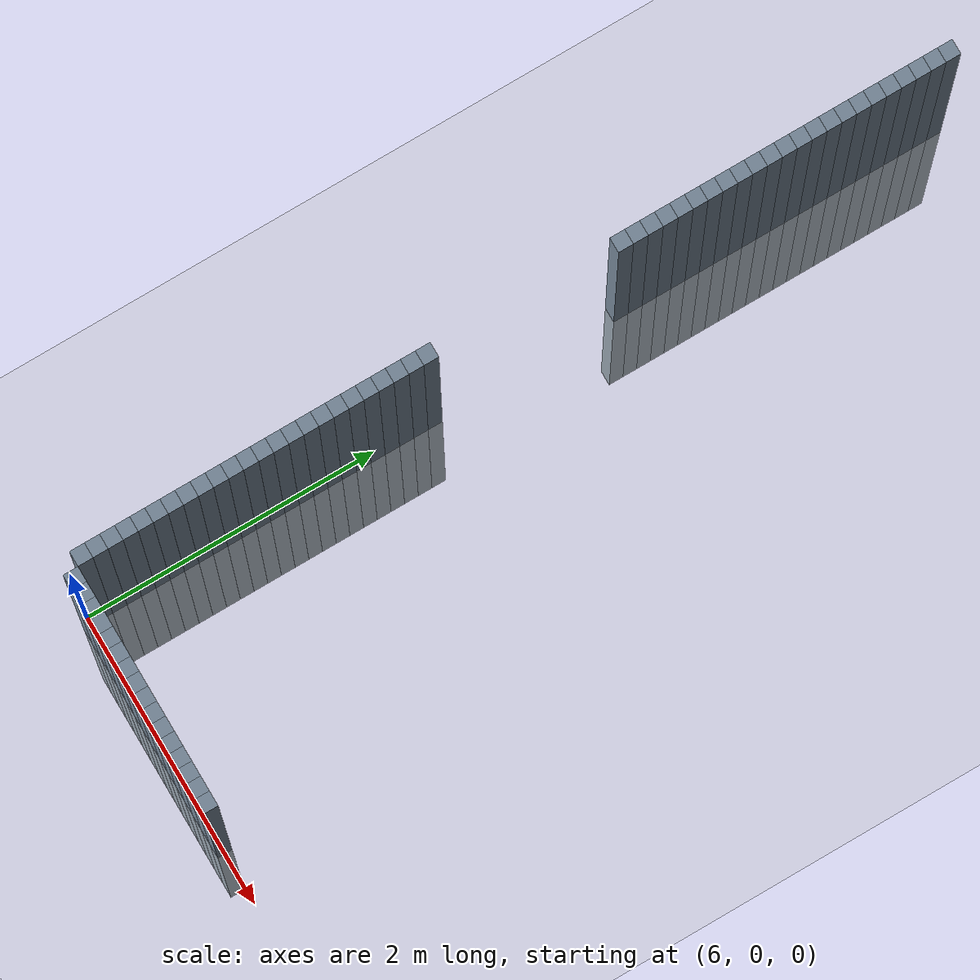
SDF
<sdf version="1.6">
 <world name="default">
  <model name="ground_plane">
   <static>1</static>
   <link name="link">
    <collision name="collision">
     <geometry><plane><normal>0 0 1</normal><size>100 100</size></plane></geometry>
     <surface><friction><ode><mu>100</mu><mu2>50</mu2></ode></friction></surface>
    </collision>
    <visual name="visual">
     <cast_shadows>0</cast_shadows>
     <geometry><plane><normal>0 0 1</normal><size>100 100</size></plane></geometry>
     <material>
      <script><uri>file://media/materials/scripts/gazebo.material</uri><name>Gazebo/Grey</name></script>
     </material>
    </visual>
   </link>
  </model>
  <model name="unit_cylinder_182">
   <static>1</static>
   <pose>6 0.1 0 0 -0 0</pose>
   <link name="link">
    <inertial>
     <mass>1</mass>
     <inertia><ixx>0.145833</ixx><ixy>0</ixy><ixz>0</ixz><iyy>0.145833</iyy><iyz>0</iyz><izz>0.125</izz></inertia>
    </inertial>
    <collision name="collision"><geometry><box><size>0.1 0.1 5</size></box></geometry></collision>
    <visual name="visual">
     <geometry><box><size>0.1 0.1 5</size></box></geometry>
     <material><ambient>0.466667 0.533333 0.6 1</ambient><diffuse>0.466667 0.533333 0.6 1</diffuse></material>
     <material>
      <script><name>Gazebo/Grey</name><uri>file://media/materials/scripts/gazebo.material</uri></script>
     </material>
    </visual>
   </link>
  </model>
  <model name="unit_cylinder_183">
   <static>1</static>
   <pose>6 0.2 0 0 -0 0</pose>
   <link name="link">
    <inertial>
     <mass>1</mass>
     <inertia><ixx>0.145833</ixx><ixy>0</ixy><ixz>0</ixz><iyy>0.145833</iyy><iyz>0</iyz><izz>0.125</izz></inertia>
    </inertial>
    <collision name="collision"><geometry><box><size>0.1 0.1 5</size></box></geometry></collision>
    <visual name="visual">
     <geometry><box><size>0.1 0.1 5</size></box></geometry>
     <material><ambient>0.466667 0.533333 0.6 1</ambient><diffuse>0.466667 0.533333 0.6 1</diffuse></material>
     <material>
      <script><name>Gazebo/Grey</name><uri>file://media/materials/scripts/gazebo.material</uri></script>
     </material>
    </visual>
   </link>
  </model>
  <model name="unit_cylinder_184">
   <static>1</static>
   <pose>6 0.3 0 0 -0 0</pose>
   <link name="link">
    <inertial>
     <mass>1</mass>
     <inertia><ixx>0.145833</ixx><ixy>0</ixy><ixz>0</ixz><iyy>0.145833</iyy><iyz>0</iyz><izz>0.125</izz></inertia>
    </inertial>
    <collision name="collision"><geometry><box><size>0.1 0.1 5</size></box></geometry></collision>
    <visual name="visual">
     <geometry><box><size>0.1 0.1 5</size></box></geometry>
     <material><ambient>0.466667 0.533333 0.6 1</ambient><diffuse>0.466667 0.533333 0.6 1</diffuse></material>
     <material>
      <script><name>Gazebo/Grey</name><uri>file://media/materials/scripts/gazebo.material</uri></script>
     </material>
    </visual>
   </link>
  </model>
  <model name="unit_cylinder_185">
   <static>1</static>
   <pose>6 0.4 0 0 -0 0</pose>
   <link name="link">
    <inertial>
     <mass>1</mass>
     <inertia><ixx>0.145833</ixx><ixy>0</ixy><ixz>0</ixz><iyy>0.145833</iyy><iyz>0</iyz><izz>0.125</izz></inertia>
    </inertial>
    <collision name="collision"><geometry><box><size>0.1 0.1 5</size></box></geometry></collision>
    <visual name="visual">
     <geometry><box><size>0.1 0.1 5</size></box></geometry>
     <material><ambient>0.466667 0.533333 0.6 1</ambient><diffuse>0.466667 0.533333 0.6 1</diffuse></material>
     <material>
      <script><name>Gazebo/Grey</name><uri>file://media/materials/scripts/gazebo.material</uri></script>
     </material>
    </visual>
   </link>
  </model>
  <model name="unit_cylinder_186">
   <static>1</static>
   <pose>6 0.5 0 0 -0 0</pose>
   <link name="link">
    <inertial>
     <mass>1</mass>
     <inertia><ixx>0.145833</ixx><ixy>0</ixy><ixz>0</ixz><iyy>0.145833</iyy><iyz>0</iyz><izz>0.125</izz></inertia>
    </inertial>
    <collision name="collision"><geometry><box><size>0.1 0.1 5</size></box></geometry></collision>
    <visual name="visual">
     <geometry><box><size>0.1 0.1 5</size></box></geometry>
     <material><ambient>0.466667 0.533333 0.6 1</ambient><diffuse>0.466667 0.533333 0.6 1</diffuse></material>
     <material>
      <script><name>Gazebo/Grey</name><uri>file://media/materials/scripts/gazebo.material</uri></script>
     </material>
    </visual>
   </link>
  </model>
  <model name="unit_cylinder_187">
   <static>1</static>
   <pose>6 0.6 0 0 -0 0</pose>
   <link name="link">
    <inertial>
     <mass>1</mass>
     <inertia><ixx>0.145833</ixx><ixy>0</ixy><ixz>0</ixz><iyy>0.145833</iyy><iyz>0</iyz><izz>0.125</izz></inertia>
    </inertial>
    <collision name="collision"><geometry><box><size>0.1 0.1 5</size></box></geometry></collision>
    <visual name="visual">
     <geometry><box><size>0.1 0.1 5</size></box></geometry>
     <material><ambient>0.466667 0.533333 0.6 1</ambient><diffuse>0.466667 0.533333 0.6 1</diffuse></material>
     <material>
      <script><name>Gazebo/Grey</name><uri>file://media/materials/scripts/gazebo.material</uri></script>
     </material>
    </visual>
   </link>
  </model>
  <model name="unit_cylinder_188">
   <static>1</static>
   <pose>6 0.7 0 0 -0 0</pose>
   <link name="link">
    <inertial>
     <mass>1</mass>
     <inertia><ixx>0.145833</ixx><ixy>0</ixy><ixz>0</ixz><iyy>0.145833</iyy><iyz>0</iyz><izz>0.125</izz></inertia>
    </inertial>
    <collision name="collision"><geometry><box><size>0.1 0.1 5</size></box></geometry></collision>
    <visual name="visual">
     <geometry><box><size>0.1 0.1 5</size></box></geometry>
     <material><ambient>0.466667 0.533333 0.6 1</ambient><diffuse>0.466667 0.533333 0.6 1</diffuse></material>
     <material>
      <script><name>Gazebo/Grey</name><uri>file://media/materials/scripts/gazebo.material</uri></script>
     </material>
    </visual>
   </link>
  </model>
  <model name="unit_cylinder_189">
   <static>1</static>
   <pose>6 0.8 0 0 -0 0</pose>
   <link name="link">
    <inertial>
     <mass>1</mass>
     <inertia><ixx>0.145833</ixx><ixy>0</ixy><ixz>0</ixz><iyy>0.145833</iyy><iyz>0</iyz><izz>0.125</izz></inertia>
    </inertial>
    <collision name="collision"><geometry><box><size>0.1 0.1 5</size></box></geometry></collision>
    <visual name="visual">
     <geometry><box><size>0.1 0.1 5</size></box></geometry>
     <material><ambient>0.466667 0.533333 0.6 1</ambient><diffuse>0.466667 0.533333 0.6 1</diffuse></material>
     <material>
      <script><name>Gazebo/Grey</name><uri>file://media/materials/scripts/gazebo.material</uri></script>
     </material>
    </visual>
   </link>
  </model>
  <model name="unit_cylinder_190">
   <static>1</static>
   <pose>6 0.9 0 0 -0 0</pose>
   <link name="link">
    <inertial>
     <mass>1</mass>
     <inertia><ixx>0.145833</ixx><ixy>0</ixy><ixz>0</ixz><iyy>0.145833</iyy><iyz>0</iyz><izz>0.125</izz></inertia>
    </inertial>
    <collision name="collision"><geometry><box><size>0.1 0.1 5</size></box></geometry></collision>
    <visual name="visual">
     <geometry><box><size>0.1 0.1 5</size></box></geometry>
     <material><ambient>0.466667 0.533333 0.6 1</ambient><diffuse>0.466667 0.533333 0.6 1</diffuse></material>
     <material>
      <script><name>Gazebo/Grey</name><uri>file://media/materials/scripts/gazebo.material</uri></script>
     </material>
    </visual>
   </link>
  </model>
  <model name="unit_cylinder_191">
   <static>1</static>
   <pose>6 1 0 0 -0 0</pose>
   <link name="link">
    <inertial>
     <mass>1</mass>
     <inertia><ixx>0.145833</ixx><ixy>0</ixy><ixz>0</ixz><iyy>0.145833</iyy><iyz>0</iyz><izz>0.125</izz></inertia>
    </inertial>
    <collision name="collision"><geometry><box><size>0.1 0.1 5</size></box></geometry></collision>
    <visual name="visual">
     <geometry><box><size>0.1 0.1 5</size></box></geometry>
     <material><ambient>0.466667 0.533333 0.6 1</ambient><diffuse>0.466667 0.533333 0.6 1</diffuse></material>
     <material>
      <script><name>Gazebo/Grey</name><uri>file://media/materials/scripts/gazebo.material</uri></script>
     </material>
    </visual>
   </link>
  </model>
  <model name="unit_cylinder_192">
   <static>1</static>
   <pose>6 1.1 0 0 -0 0</pose>
   <link name="link">
    <inertial>
     <mass>1</mass>
     <inertia><ixx>0.145833</ixx><ixy>0</ixy><ixz>0</ixz><iyy>0.145833</iyy><iyz>0</iyz><izz>0.125</izz></inertia>
    </inertial>
    <collision name="collision"><geometry><box><size>0.1 0.1 5</size></box></geometry></collision>
    <visual name="visual">
     <geometry><box><size>0.1 0.1 5</size></box></geometry>
     <material><ambient>0.466667 0.533333 0.6 1</ambient><diffuse>0.466667 0.533333 0.6 1</diffuse></material>
     <material>
      <script><name>Gazebo/Grey</name><uri>file://media/materials/scripts/gazebo.material</uri></script>
     </material>
    </visual>
   </link>
  </model>
  <model name="unit_cylinder_193">
   <static>1</static>
   <pose>6 1.2 0 0 -0 0</pose>
   <link name="link">
    <inertial>
     <mass>1</mass>
     <inertia><ixx>0.145833</ixx><ixy>0</ixy><ixz>0</ixz><iyy>0.145833</iyy><iyz>0</iyz><izz>0.125</izz></inertia>
    </inertial>
    <collision name="collision"><geometry><box><size>0.1 0.1 5</size></box></geometry></collision>
    <visual name="visual">
     <geometry><box><size>0.1 0.1 5</size></box></geometry>
     <material><ambient>0.466667 0.533333 0.6 1</ambient><diffuse>0.466667 0.533333 0.6 1</diffuse></material>
     <material>
      <script><name>Gazebo/Grey</name><uri>file://media/materials/scripts/gazebo.material</uri></script>
     </material>
    </visual>
   </link>
  </model>
  <model name="unit_cylinder_194">
   <static>1</static>
   <pose>6 1.3 0 0 -0 0</pose>
   <link name="link">
    <inertial>
     <mass>1</mass>
     <inertia><ixx>0.145833</ixx><ixy>0</ixy><ixz>0</ixz><iyy>0.145833</iyy><iyz>0</iyz><izz>0.125</izz></inertia>
    </inertial>
    <collision name="collision"><geometry><box><size>0.1 0.1 5</size></box></geometry></collision>
    <visual name="visual">
     <geometry><box><size>0.1 0.1 5</size></box></geometry>
     <material><ambient>0.466667 0.533333 0.6 1</ambient><diffuse>0.466667 0.533333 0.6 1</diffuse></material>
     <material>
      <script><name>Gazebo/Grey</name><uri>file://media/materials/scripts/gazebo.material</uri></script>
     </material>
    </visual>
   </link>
  </model>
  <model name="unit_cylinder_195">
   <static>1</static>
   <pose>6 1.4 0 0 -0 0</pose>
   <link name="link">
    <inertial>
     <mass>1</mass>
     <inertia><ixx>0.145833</ixx><ixy>0</ixy><ixz>0</ixz><iyy>0.145833</iyy><iyz>0</iyz><izz>0.125</izz></inertia>
    </inertial>
    <collision name="collision"><geometry><box><size>0.1 0.1 5</size></box></geometry></collision>
    <visual name="visual">
     <geometry><box><size>0.1 0.1 5</size></box></geometry>
     <material><ambient>0.466667 0.533333 0.6 1</ambient><diffuse>0.466667 0.533333 0.6 1</diffuse></material>
     <material>
      <script><name>Gazebo/Grey</name><uri>file://media/materials/scripts/gazebo.material</uri></script>
     </material>
    </visual>
   </link>
  </model>
  <model name="unit_cylinder_196">
   <static>1</static>
   <pose>6 1.5 0 0 -0 0</pose>
   <link name="link">
    <inertial>
     <mass>1</mass>
     <inertia><ixx>0.145833</ixx><ixy>0</ixy><ixz>0</ixz><iyy>0.145833</iyy><iyz>0</iyz><izz>0.125</izz></inertia>
    </inertial>
    <collision name="collision"><geometry><box><size>0.1 0.1 5</size></box></geometry></collision>
    <visual name="visual">
     <geometry><box><size>0.1 0.1 5</size></box></geometry>
     <material><ambient>0.466667 0.533333 0.6 1</ambient><diffuse>0.466667 0.533333 0.6 1</diffuse></material>
     <material>
      <script><name>Gazebo/Grey</name><uri>file://media/materials/scripts/gazebo.material</uri></script>
     </material>
    </visual>
   </link>
  </model>
  <model name="unit_cylinder_197">
   <static>1</static>
   <pose>6 1.6 0 0 -0 0</pose>
   <link name="link">
    <inertial>
     <mass>1</mass>
     <inertia><ixx>0.145833</ixx><ixy>0</ixy><ixz>0</ixz><iyy>0.145833</iyy><iyz>0</iyz><izz>0.125</izz></inertia>
    </inertial>
    <collision name="collision"><geometry><box><size>0.1 0.1 5</size></box></geometry></collision>
    <visual name="visual">
     <geometry><box><size>0.1 0.1 5</size></box></geometry>
     <material><ambient>0.466667 0.533333 0.6 1</ambient><diffuse>0.466667 0.533333 0.6 1</diffuse></material>
     <material>
      <script><name>Gazebo/Grey</name><uri>file://media/materials/scripts/gazebo.material</uri></script>
     </material>
    </visual>
   </link>
  </model>
  <model name="unit_cylinder_198">
   <static>1</static>
   <pose>6 1.7 0 0 -0 0</pose>
   <link name="link">
    <inertial>
     <mass>1</mass>
     <inertia><ixx>0.145833</ixx><ixy>0</ixy><ixz>0</ixz><iyy>0.145833</iyy><iyz>0</iyz><izz>0.125</izz></inertia>
    </inertial>
    <collision name="collision"><geometry><box><size>0.1 0.1 5</size></box></geometry></collision>
    <visual name="visual">
     <geometry><box><size>0.1 0.1 5</size></box></geometry>
     <material><ambient>0.466667 0.533333 0.6 1</ambient><diffuse>0.466667 0.533333 0.6 1</diffuse></material>
     <material>
      <script><name>Gazebo/Grey</name><uri>file://media/materials/scripts/gazebo.material</uri></script>
     </material>
    </visual>
   </link>
  </model>
  <model name="unit_cylinder_199">
   <static>1</static>
   <pose>6 1.8 0 0 -0 0</pose>
   <link name="link">
    <inertial>
     <mass>1</mass>
     <inertia><ixx>0.145833</ixx><ixy>0</ixy><ixz>0</ixz><iyy>0.145833</iyy><iyz>0</iyz><izz>0.125</izz></inertia>
    </inertial>
    <collision name="collision"><geometry><box><size>0.1 0.1 5</size></box></geometry></collision>
    <visual name="visual">
     <geometry><box><size>0.1 0.1 5</size></box></geometry>
     <material><ambient>0.466667 0.533333 0.6 1</ambient><diffuse>0.466667 0.533333 0.6 1</diffuse></material>
     <material>
      <script><name>Gazebo/Grey</name><uri>file://media/materials/scripts/gazebo.material</uri></script>
     </material>
    </visual>
   </link>
  </model>
  <model name="unit_cylinder_200">
   <static>1</static>
   <pose>6 1.9 0 0 -0 0</pose>
   <link name="link">
    <inertial>
     <mass>1</mass>
     <inertia><ixx>0.145833</ixx><ixy>0</ixy><ixz>0</ixz><iyy>0.145833</iyy><iyz>0</iyz><izz>0.125</izz></inertia>
    </inertial>
    <collision name="collision"><geometry><box><size>0.1 0.1 5</size></box></geometry></collision>
    <visual name="visual">
     <geometry><box><size>0.1 0.1 5</size></box></geometry>
     <material><ambient>0.466667 0.533333 0.6 1</ambient><diffuse>0.466667 0.533333 0.6 1</diffuse></material>
     <material>
      <script><name>Gazebo/Grey</name><uri>file://media/materials/scripts/gazebo.material</uri></script>
     </material>
    </visual>
   </link>
  </model>
  <model name="unit_cylinder_201">
   <static>1</static>
   <pose>6 2 0 0 -0 0</pose>
   <link name="link">
    <inertial>
     <mass>1</mass>
     <inertia><ixx>0.145833</ixx><ixy>0</ixy><ixz>0</ixz><iyy>0.145833</iyy><iyz>0</iyz><izz>0.125</izz></inertia>
    </inertial>
    <collision name="collision"><geometry><box><size>0.1 0.1 5</size></box></geometry></collision>
    <visual name="visual">
     <geometry><box><size>0.1 0.1 5</size></box></geometry>
     <material><ambient>0.466667 0.533333 0.6 1</ambient><diffuse>0.466667 0.533333 0.6 1</diffuse></material>
     <material>
      <script><name>Gazebo/Grey</name><uri>file://media/materials/scripts/gazebo.material</uri></script>
     </material>
    </visual>
   </link>
  </model>
  <model name="unit_cylinder_202">
   <static>1</static>
   <pose>6 2.1 0 0 -0 0</pose>
   <link name="link">
    <inertial>
     <mass>1</mass>
     <inertia><ixx>0.145833</ixx><ixy>0</ixy><ixz>0</ixz><iyy>0.145833</iyy><iyz>0</iyz><izz>0.125</izz></inertia>
    </inertial>
    <collision name="collision"><geometry><box><size>0.1 0.1 5</size></box></geometry></collision>
    <visual name="visual">
     <geometry><box><size>0.1 0.1 5</size></box></geometry>
     <material><ambient>0.466667 0.533333 0.6 1</ambient><diffuse>0.466667 0.533333 0.6 1</diffuse></material>
     <material>
      <script><name>Gazebo/Grey</name><uri>file://media/materials/scripts/gazebo.material</uri></script>
     </material>
    </visual>
   </link>
  </model>
  <model name="unit_cylinder_203">
   <static>1</static>
   <pose>6 2.2 0 0 -0 0</pose>
   <link name="link">
    <inertial>
     <mass>1</mass>
     <inertia><ixx>0.145833</ixx><ixy>0</ixy><ixz>0</ixz><iyy>0.145833</iyy><iyz>0</iyz><izz>0.125</izz></inertia>
    </inertial>
    <collision name="collision"><geometry><box><size>0.1 0.1 5</size></box></geometry></collision>
    <visual name="visual">
     <geometry><box><size>0.1 0.1 5</size></box></geometry>
     <material><ambient>0.466667 0.533333 0.6 1</ambient><diffuse>0.466667 0.533333 0.6 1</diffuse></material>
     <material>
      <script><name>Gazebo/Grey</name><uri>file://media/materials/scripts/gazebo.material</uri></script>
     </material>
    </visual>
   </link>
  </model>
  <model name="unit_cylinder_204">
   <static>1</static>
   <pose>6 2.3 0 0 -0 0</pose>
   <link name="link">
    <inertial>
     <mass>1</mass>
     <inertia><ixx>0.145833</ixx><ixy>0</ixy><ixz>0</ixz><iyy>0.145833</iyy><iyz>0</iyz><izz>0.125</izz></inertia>
    </inertial>
    <collision name="collision"><geometry><box><size>0.1 0.1 5</size></box></geometry></collision>
    <visual name="visual">
     <geometry><box><size>0.1 0.1 5</size></box></geometry>
     <material><ambient>0.466667 0.533333 0.6 1</ambient><diffuse>0.466667 0.533333 0.6 1</diffuse></material>
     <material>
      <script><name>Gazebo/Grey</name><uri>file://media/materials/scripts/gazebo.material</uri></script>
     </material>
    </visual>
   </link>
  </model>
  <model name="unit_cylinder_205">
   <static>1</static>
   <pose>6 2.4 0 0 -0 0</pose>
   <link name="link">
    <inertial>
     <mass>1</mass>
     <inertia><ixx>0.145833</ixx><ixy>0</ixy><ixz>0</ixz><iyy>0.145833</iyy><iyz>0</iyz><izz>0.125</izz></inertia>
    </inertial>
    <collision name="collision"><geometry><box><size>0.1 0.1 5</size></box></geometry></collision>
    <visual name="visual">
     <geometry><box><size>0.1 0.1 5</size></box></geometry>
     <material><ambient>0.466667 0.533333 0.6 1</ambient><diffuse>0.466667 0.533333 0.6 1</diffuse></material>
     <material>
      <script><name>Gazebo/Grey</name><uri>file://media/materials/scripts/gazebo.material</uri></script>
     </material>
    </visual>
   </link>
  </model>
  <model name="unit_cylinder_218">
   <static>1</static>
   <pose>6 3.7 0 0 -0 0</pose>
   <link name="link">
    <inertial>
     <mass>1</mass>
     <inertia><ixx>0.145833</ixx><ixy>0</ixy><ixz>0</ixz><iyy>0.145833</iyy><iyz>0</iyz><izz>0.125</izz></inertia>
    </inertial>
    <collision name="collision"><geometry><box><size>0.1 0.1 5</size></box></geometry></collision>
    <visual name="visual">
     <geometry><box><size>0.1 0.1 5</size></box></geometry>
     <material><ambient>0.466667 0.533333 0.6 1</ambient><diffuse>0.466667 0.533333 0.6 1</diffuse></material>
     <material>
      <script><name>Gazebo/Grey</name><uri>file://media/materials/scripts/gazebo.material</uri></script>
     </material>
    </visual>
   </link>
  </model>
  <model name="unit_cylinder_219">
   <static>1</static>
   <pose>6 3.8 0 0 -0 0</pose>
   <link name="link">
    <inertial>
     <mass>1</mass>
     <inertia><ixx>0.145833</ixx><ixy>0</ixy><ixz>0</ixz><iyy>0.145833</iyy><iyz>0</iyz><izz>0.125</izz></inertia>
    </inertial>
    <collision name="collision"><geometry><box><size>0.1 0.1 5</size></box></geometry></collision>
    <visual name="visual">
     <geometry><box><size>0.1 0.1 5</size></box></geometry>
     <material><ambient>0.466667 0.533333 0.6 1</ambient><diffuse>0.466667 0.533333 0.6 1</diffuse></material>
     <material>
      <script><name>Gazebo/Grey</name><uri>file://media/materials/scripts/gazebo.material</uri></script>
     </material>
    </visual>
   </link>
  </model>
  <model name="unit_cylinder_220">
   <static>1</static>
   <pose>6 3.9 0 0 -0 0</pose>
   <link name="link">
    <inertial>
     <mass>1</mass>
     <inertia><ixx>0.145833</ixx><ixy>0</ixy><ixz>0</ixz><iyy>0.145833</iyy><iyz>0</iyz><izz>0.125</izz></inertia>
    </inertial>
    <collision name="collision"><geometry><box><size>0.1 0.1 5</size></box></geometry></collision>
    <visual name="visual">
     <geometry><box><size>0.1 0.1 5</size></box></geometry>
     <material><ambient>0.466667 0.533333 0.6 1</ambient><diffuse>0.466667 0.533333 0.6 1</diffuse></material>
     <material>
      <script><name>Gazebo/Grey</name><uri>file://media/materials/scripts/gazebo.material</uri></script>
     </material>
    </visual>
   </link>
  </model>
  <model name="unit_cylinder_221">
   <static>1</static>
   <pose>6 4 0 0 -0 0</pose>
   <link name="link">
    <inertial>
     <mass>1</mass>
     <inertia><ixx>0.145833</ixx><ixy>0</ixy><ixz>0</ixz><iyy>0.145833</iyy><iyz>0</iyz><izz>0.125</izz></inertia>
    </inertial>
    <collision name="collision"><geometry><box><size>0.1 0.1 5</size></box></geometry></collision>
    <visual name="visual">
     <geometry><box><size>0.1 0.1 5</size></box></geometry>
     <material><ambient>0.466667 0.533333 0.6 1</ambient><diffuse>0.466667 0.533333 0.6 1</diffuse></material>
     <material>
      <script><name>Gazebo/Grey</name><uri>file://media/materials/scripts/gazebo.material</uri></script>
     </material>
    </visual>
   </link>
  </model>
  <model name="unit_cylinder_222">
   <static>1</static>
   <pose>6 4.1 0 0 -0 0</pose>
   <link name="link">
    <inertial>
     <mass>1</mass>
     <inertia><ixx>0.145833</ixx><ixy>0</ixy><ixz>0</ixz><iyy>0.145833</iyy><iyz>0</iyz><izz>0.125</izz></inertia>
    </inertial>
    <collision name="collision"><geometry><box><size>0.1 0.1 5</size></box></geometry></collision>
    <visual name="visual">
     <geometry><box><size>0.1 0.1 5</size></box></geometry>
     <material><ambient>0.466667 0.533333 0.6 1</ambient><diffuse>0.466667 0.533333 0.6 1</diffuse></material>
     <material>
      <script><name>Gazebo/Grey</name><uri>file://media/materials/scripts/gazebo.material</uri></script>
     </material>
    </visual>
   </link>
  </model>
  <model name="unit_cylinder_223">
   <static>1</static>
   <pose>6 4.2 0 0 -0 0</pose>
   <link name="link">
    <inertial>
     <mass>1</mass>
     <inertia><ixx>0.145833</ixx><ixy>0</ixy><ixz>0</ixz><iyy>0.145833</iyy><iyz>0</iyz><izz>0.125</izz></inertia>
    </inertial>
    <collision name="collision"><geometry><box><size>0.1 0.1 5</size></box></geometry></collision>
    <visual name="visual">
     <geometry><box><size>0.1 0.1 5</size></box></geometry>
     <material><ambient>0.466667 0.533333 0.6 1</ambient><diffuse>0.466667 0.533333 0.6 1</diffuse></material>
     <material>
      <script><name>Gazebo/Grey</name><uri>file://media/materials/scripts/gazebo.material</uri></script>
     </material>
    </visual>
   </link>
  </model>
  <model name="unit_cylinder_224">
   <static>1</static>
   <pose>6 4.3 0 0 -0 0</pose>
   <link name="link">
    <inertial>
     <mass>1</mass>
     <inertia><ixx>0.145833</ixx><ixy>0</ixy><ixz>0</ixz><iyy>0.145833</iyy><iyz>0</iyz><izz>0.125</izz></inertia>
    </inertial>
    <collision name="collision"><geometry><box><size>0.1 0.1 5</size></box></geometry></collision>
    <visual name="visual">
     <geometry><box><size>0.1 0.1 5</size></box></geometry>
     <material><ambient>0.466667 0.533333 0.6 1</ambient><diffuse>0.466667 0.533333 0.6 1</diffuse></material>
     <material>
      <script><name>Gazebo/Grey</name><uri>file://media/materials/scripts/gazebo.material</uri></script>
     </material>
    </visual>
   </link>
  </model>
  <model name="unit_cylinder_225">
   <static>1</static>
   <pose>6 4.4 0 0 -0 0</pose>
   <link name="link">
    <inertial>
     <mass>1</mass>
     <inertia><ixx>0.145833</ixx><ixy>0</ixy><ixz>0</ixz><iyy>0.145833</iyy><iyz>0</iyz><izz>0.125</izz></inertia>
    </inertial>
    <collision name="collision"><geometry><box><size>0.1 0.1 5</size></box></geometry></collision>
    <visual name="visual">
     <geometry><box><size>0.1 0.1 5</size></box></geometry>
     <material><ambient>0.466667 0.533333 0.6 1</ambient><diffuse>0.466667 0.533333 0.6 1</diffuse></material>
     <material>
      <script><name>Gazebo/Grey</name><uri>file://media/materials/scripts/gazebo.material</uri></script>
     </material>
    </visual>
   </link>
  </model>
  <model name="unit_cylinder_226">
   <static>1</static>
   <pose>6 4.5 0 0 -0 0</pose>
   <link name="link">
    <inertial>
     <mass>1</mass>
     <inertia><ixx>0.145833</ixx><ixy>0</ixy><ixz>0</ixz><iyy>0.145833</iyy><iyz>0</iyz><izz>0.125</izz></inertia>
    </inertial>
    <collision name="collision"><geometry><box><size>0.1 0.1 5</size></box></geometry></collision>
    <visual name="visual">
     <geometry><box><size>0.1 0.1 5</size></box></geometry>
     <material><ambient>0.466667 0.533333 0.6 1</ambient><diffuse>0.466667 0.533333 0.6 1</diffuse></material>
     <material>
      <script><name>Gazebo/Grey</name><uri>file://media/materials/scripts/gazebo.material</uri></script>
     </material>
    </visual>
   </link>
  </model>
  <model name="unit_cylinder_227">
   <static>1</static>
   <pose>6 4.6 0 0 -0 0</pose>
   <link name="link">
    <inertial>
     <mass>1</mass>
     <inertia><ixx>0.145833</ixx><ixy>0</ixy><ixz>0</ixz><iyy>0.145833</iyy><iyz>0</iyz><izz>0.125</izz></inertia>
    </inertial>
    <collision name="collision"><geometry><box><size>0.1 0.1 5</size></box></geometry></collision>
    <visual name="visual">
     <geometry><box><size>0.1 0.1 5</size></box></geometry>
     <material><ambient>0.466667 0.533333 0.6 1</ambient><diffuse>0.466667 0.533333 0.6 1</diffuse></material>
     <material>
      <script><name>Gazebo/Grey</name><uri>file://media/materials/scripts/gazebo.material</uri></script>
     </material>
    </visual>
   </link>
  </model>
  <model name="unit_cylinder_228">
   <static>1</static>
   <pose>6 4.7 0 0 -0 0</pose>
   <link name="link">
    <inertial>
     <mass>1</mass>
     <inertia><ixx>0.145833</ixx><ixy>0</ixy><ixz>0</ixz><iyy>0.145833</iyy><iyz>0</iyz><izz>0.125</izz></inertia>
    </inertial>
    <collision name="collision"><geometry><box><size>0.1 0.1 5</size></box></geometry></collision>
    <visual name="visual">
     <geometry><box><size>0.1 0.1 5</size></box></geometry>
     <material><ambient>0.466667 0.533333 0.6 1</ambient><diffuse>0.466667 0.533333 0.6 1</diffuse></material>
     <material>
      <script><name>Gazebo/Grey</name><uri>file://media/materials/scripts/gazebo.material</uri></script>
     </material>
    </visual>
   </link>
  </model>
  <model name="unit_cylinder_229">
   <static>1</static>
   <pose>6 4.8 0 0 -0 0</pose>
   <link name="link">
    <inertial>
     <mass>1</mass>
     <inertia><ixx>0.145833</ixx><ixy>0</ixy><ixz>0</ixz><iyy>0.145833</iyy><iyz>0</iyz><izz>0.125</izz></inertia>
    </inertial>
    <collision name="collision"><geometry><box><size>0.1 0.1 5</size></box></geometry></collision>
    <visual name="visual">
     <geometry><box><size>0.1 0.1 5</size></box></geometry>
     <material><ambient>0.466667 0.533333 0.6 1</ambient><diffuse>0.466667 0.533333 0.6 1</diffuse></material>
     <material>
      <script><name>Gazebo/Grey</name><uri>file://media/materials/scripts/gazebo.material</uri></script>
     </material>
    </visual>
   </link>
  </model>
  <model name="unit_cylinder_230">
   <static>1</static>
   <pose>6 4.9 0 0 -0 0</pose>
   <link name="link">
    <inertial>
     <mass>1</mass>
     <inertia><ixx>0.145833</ixx><ixy>0</ixy><ixz>0</ixz><iyy>0.145833</iyy><iyz>0</iyz><izz>0.125</izz></inertia>
    </inertial>
    <collision name="collision"><geometry><box><size>0.1 0.1 5</size></box></geometry></collision>
    <visual name="visual">
     <geometry><box><size>0.1 0.1 5</size></box></geometry>
     <material><ambient>0.466667 0.533333 0.6 1</ambient><diffuse>0.466667 0.533333 0.6 1</diffuse></material>
     <material>
      <script><name>Gazebo/Grey</name><uri>file://media/materials/scripts/gazebo.material</uri></script>
     </material>
    </visual>
   </link>
  </model>
  <model name="unit_cylinder_231">
   <static>1</static>
   <pose>6 5 0 0 -0 0</pose>
   <link name="link">
    <inertial>
     <mass>1</mass>
     <inertia><ixx>0.145833</ixx><ixy>0</ixy><ixz>0</ixz><iyy>0.145833</iyy><iyz>0</iyz><izz>0.125</izz></inertia>
    </inertial>
    <collision name="collision"><geometry><box><size>0.1 0.1 5</size></box></geometry></collision>
    <visual name="visual">
     <geometry><box><size>0.1 0.1 5</size></box></geometry>
     <material><ambient>0.466667 0.533333 0.6 1</ambient><diffuse>0.466667 0.533333 0.6 1</diffuse></material>
     <material>
      <script><name>Gazebo/Grey</name><uri>file://media/materials/scripts/gazebo.material</uri></script>
     </material>
    </visual>
   </link>
  </model>
  <model name="unit_cylinder_232">
   <static>1</static>
   <pose>6 5.1 0 0 -0 0</pose>
   <link name="link">
    <inertial>
     <mass>1</mass>
     <inertia><ixx>0.145833</ixx><ixy>0</ixy><ixz>0</ixz><iyy>0.145833</iyy><iyz>0</iyz><izz>0.125</izz></inertia>
    </inertial>
    <collision name="collision"><geometry><box><size>0.1 0.1 5</size></box></geometry></collision>
    <visual name="visual">
     <geometry><box><size>0.1 0.1 5</size></box></geometry>
     <material><ambient>0.466667 0.533333 0.6 1</ambient><diffuse>0.466667 0.533333 0.6 1</diffuse></material>
     <material>
      <script><name>Gazebo/Grey</name><uri>file://media/materials/scripts/gazebo.material</uri></script>
     </material>
    </visual>
   </link>
  </model>
  <model name="unit_cylinder_233">
   <static>1</static>
   <pose>6 5.2 0 0 -0 0</pose>
   <link name="link">
    <inertial>
     <mass>1</mass>
     <inertia><ixx>0.145833</ixx><ixy>0</ixy><ixz>0</ixz><iyy>0.145833</iyy><iyz>0</iyz><izz>0.125</izz></inertia>
    </inertial>
    <collision name="collision"><geometry><box><size>0.1 0.1 5</size></box></geometry></collision>
    <visual name="visual">
     <geometry><box><size>0.1 0.1 5</size></box></geometry>
     <material><ambient>0.466667 0.533333 0.6 1</ambient><diffuse>0.466667 0.533333 0.6 1</diffuse></material>
     <material>
      <script><name>Gazebo/Grey</name><uri>file://media/materials/scripts/gazebo.material</uri></script>
     </material>
    </visual>
   </link>
  </model>
  <model name="unit_cylinder_234">
   <static>1</static>
   <pose>6 5.3 0 0 -0 0</pose>
   <link name="link">
    <inertial>
     <mass>1</mass>
     <inertia><ixx>0.145833</ixx><ixy>0</ixy><ixz>0</ixz><iyy>0.145833</iyy><iyz>0</iyz><izz>0.125</izz></inertia>
    </inertial>
    <collision name="collision"><geometry><box><size>0.1 0.1 5</size></box></geometry></collision>
    <visual name="visual">
     <geometry><box><size>0.1 0.1 5</size></box></geometry>
     <material><ambient>0.466667 0.533333 0.6 1</ambient><diffuse>0.466667 0.533333 0.6 1</diffuse></material>
     <material>
      <script><name>Gazebo/Grey</name><uri>file://media/materials/scripts/gazebo.material</uri></script>
     </material>
    </visual>
   </link>
  </model>
  <model name="unit_cylinder_235">
   <static>1</static>
   <pose>6 5.4 0 0 -0 0</pose>
   <link name="link">
    <inertial>
     <mass>1</mass>
     <inertia><ixx>0.145833</ixx><ixy>0</ixy><ixz>0</ixz><iyy>0.145833</iyy><iyz>0</iyz><izz>0.125</izz></inertia>
    </inertial>
    <collision name="collision"><geometry><box><size>0.1 0.1 5</size></box></geometry></collision>
    <visual name="visual">
     <geometry><box><size>0.1 0.1 5</size></box></geometry>
     <material><ambient>0.466667 0.533333 0.6 1</ambient><diffuse>0.466667 0.533333 0.6 1</diffuse></material>
     <material>
      <script><name>Gazebo/Grey</name><uri>file://media/materials/scripts/gazebo.material</uri></script>
     </material>
    </visual>
   </link>
  </model>
  <model name="unit_cylinder_236">
   <static>1</static>
   <pose>6 5.5 0 0 -0 0</pose>
   <link name="link">
    <inertial>
     <mass>1</mass>
     <inertia><ixx>0.145833</ixx><ixy>0</ixy><ixz>0</ixz><iyy>0.145833</iyy><iyz>0</iyz><izz>0.125</izz></inertia>
    </inertial>
    <collision name="collision"><geometry><box><size>0.1 0.1 5</size></box></geometry></collision>
    <visual name="visual">
     <geometry><box><size>0.1 0.1 5</size></box></geometry>
     <material><ambient>0.466667 0.533333 0.6 1</ambient><diffuse>0.466667 0.533333 0.6 1</diffuse></material>
     <material>
      <script><name>Gazebo/Grey</name><uri>file://media/materials/scripts/gazebo.material</uri></script>
     </material>
    </visual>
   </link>
  </model>
  <model name="unit_cylinder_237">
   <static>1</static>
   <pose>6 5.6 0 0 -0 0</pose>
   <link name="link">
    <inertial>
     <mass>1</mass>
     <inertia><ixx>0.145833</ixx><ixy>0</ixy><ixz>0</ixz><iyy>0.145833</iyy><iyz>0</iyz><izz>0.125</izz></inertia>
    </inertial>
    <collision name="collision"><geometry><box><size>0.1 0.1 5</size></box></geometry></collision>
    <visual name="visual">
     <geometry><box><size>0.1 0.1 5</size></box></geometry>
     <material><ambient>0.466667 0.533333 0.6 1</ambient><diffuse>0.466667 0.533333 0.6 1</diffuse></material>
     <material>
      <script><name>Gazebo/Grey</name><uri>file://media/materials/scripts/gazebo.material</uri></script>
     </material>
    </visual>
   </link>
  </model>
  <model name="unit_cylinder_238">
   <static>1</static>
   <pose>6 5.7 0 0 -0 0</pose>
   <link name="link">
    <inertial>
     <mass>1</mass>
     <inertia><ixx>0.145833</ixx><ixy>0</ixy><ixz>0</ixz><iyy>0.145833</iyy><iyz>0</iyz><izz>0.125</izz></inertia>
    </inertial>
    <collision name="collision"><geometry><box><size>0.1 0.1 5</size></box></geometry></collision>
    <visual name="visual">
     <geometry><box><size>0.1 0.1 5</size></box></geometry>
     <material><ambient>0.466667 0.533333 0.6 1</ambient><diffuse>0.466667 0.533333 0.6 1</diffuse></material>
     <material>
      <script><name>Gazebo/Grey</name><uri>file://media/materials/scripts/gazebo.material</uri></script>
     </material>
    </visual>
   </link>
  </model>
  <model name="unit_cylinder_239">
   <static>1</static>
   <pose>6 5.8 0 0 -0 0</pose>
   <link name="link">
    <inertial>
     <mass>1</mass>
     <inertia><ixx>0.145833</ixx><ixy>0</ixy><ixz>0</ixz><iyy>0.145833</iyy><iyz>0</iyz><izz>0.125</izz></inertia>
    </inertial>
    <collision name="collision"><geometry><box><size>0.1 0.1 5</size></box></geometry></collision>
    <visual name="visual">
     <geometry><box><size>0.1 0.1 5</size></box></geometry>
     <material><ambient>0.466667 0.533333 0.6 1</ambient><diffuse>0.466667 0.533333 0.6 1</diffuse></material>
     <material>
      <script><name>Gazebo/Grey</name><uri>file://media/materials/scripts/gazebo.material</uri></script>
     </material>
    </visual>
   </link>
  </model>
  <model name="unit_cylinder_240">
   <static>1</static>
   <pose>6 5.9 0 0 -0 0</pose>
   <link name="link">
    <inertial>
     <mass>1</mass>
     <inertia><ixx>0.145833</ixx><ixy>0</ixy><ixz>0</ixz><iyy>0.145833</iyy><iyz>0</iyz><izz>0.125</izz></inertia>
    </inertial>
    <collision name="collision"><geometry><box><size>0.1 0.1 5</size></box></geometry></collision>
    <visual name="visual">
     <geometry><box><size>0.1 0.1 5</size></box></geometry>
     <material><ambient>0.466667 0.533333 0.6 1</ambient><diffuse>0.466667 0.533333 0.6 1</diffuse></material>
     <material>
      <script><name>Gazebo/Grey</name><uri>file://media/materials/scripts/gazebo.material</uri></script>
     </material>
    </visual>
   </link>
  </model>
  <model name="unit_cylinder_362">
   <static>1</static>
   <pose>6.1 0 0 0 -0 0</pose>
   <link name="link">
    <inertial>
     <mass>1</mass>
     <inertia><ixx>0.145833</ixx><ixy>0</ixy><ixz>0</ixz><iyy>0.145833</iyy><iyz>0</iyz><izz>0.125</izz></inertia>
    </inertial>
    <collision name="collision"><geometry><box><size>0.1 0.1 5</size></box></geometry></collision>
    <visual name="visual">
     <geometry><box><size>0.1 0.1 5</size></box></geometry>
     <material><ambient>0.466667 0.533333 0.6 1</ambient><diffuse>0.466667 0.533333 0.6 1</diffuse></material>
     <material>
      <script><name>Gazebo/Grey</name><uri>file://media/materials/scripts/gazebo.material</uri></script>
     </material>
    </visual>
   </link>
  </model>
  <model name="unit_cylinder_366">
   <static>1</static>
   <pose>6.2 0 0 0 -0 0</pose>
   <link name="link">
    <inertial>
     <mass>1</mass>
     <inertia><ixx>0.145833</ixx><ixy>0</ixy><ixz>0</ixz><iyy>0.145833</iyy><iyz>0</iyz><izz>0.125</izz></inertia>
    </inertial>
    <collision name="collision"><geometry><box><size>0.1 0.1 5</size></box></geometry></collision>
    <visual name="visual">
     <geometry><box><size>0.1 0.1 5</size></box></geometry>
     <material><ambient>0.466667 0.533333 0.6 1</ambient><diffuse>0.466667 0.533333 0.6 1</diffuse></material>
     <material>
      <script><name>Gazebo/Grey</name><uri>file://media/materials/scripts/gazebo.material</uri></script>
     </material>
    </visual>
   </link>
  </model>
  <model name="unit_cylinder_370">
   <static>1</static>
   <pose>6.3 0 0 0 -0 0</pose>
   <link name="link">
    <inertial>
     <mass>1</mass>
     <inertia><ixx>0.145833</ixx><ixy>0</ixy><ixz>0</ixz><iyy>0.145833</iyy><iyz>0</iyz><izz>0.125</izz></inertia>
    </inertial>
    <collision name="collision"><geometry><box><size>0.1 0.1 5</size></box></geometry></collision>
    <visual name="visual">
     <geometry><box><size>0.1 0.1 5</size></box></geometry>
     <material><ambient>0.466667 0.533333 0.6 1</ambient><diffuse>0.466667 0.533333 0.6 1</diffuse></material>
     <material>
      <script><name>Gazebo/Grey</name><uri>file://media/materials/scripts/gazebo.material</uri></script>
     </material>
    </visual>
   </link>
  </model>
  <model name="unit_cylinder_374">
   <static>1</static>
   <pose>6.4 0 0 0 -0 0</pose>
   <link name="link">
    <inertial>
     <mass>1</mass>
     <inertia><ixx>0.145833</ixx><ixy>0</ixy><ixz>0</ixz><iyy>0.145833</iyy><iyz>0</iyz><izz>0.125</izz></inertia>
    </inertial>
    <collision name="collision"><geometry><box><size>0.1 0.1 5</size></box></geometry></collision>
    <visual name="visual">
     <geometry><box><size>0.1 0.1 5</size></box></geometry>
     <material><ambient>0.466667 0.533333 0.6 1</ambient><diffuse>0.466667 0.533333 0.6 1</diffuse></material>
     <material>
      <script><name>Gazebo/Grey</name><uri>file://media/materials/scripts/gazebo.material</uri></script>
     </material>
    </visual>
   </link>
  </model>
  <model name="unit_cylinder_378">
   <static>1</static>
   <pose>6.5 0 0 0 -0 0</pose>
   <link name="link">
    <inertial>
     <mass>1</mass>
     <inertia><ixx>0.145833</ixx><ixy>0</ixy><ixz>0</ixz><iyy>0.145833</iyy><iyz>0</iyz><izz>0.125</izz></inertia>
    </inertial>
    <collision name="collision"><geometry><box><size>0.1 0.1 5</size></box></geometry></collision>
    <visual name="visual">
     <geometry><box><size>0.1 0.1 5</size></box></geometry>
     <material><ambient>0.466667 0.533333 0.6 1</ambient><diffuse>0.466667 0.533333 0.6 1</diffuse></material>
     <material>
      <script><name>Gazebo/Grey</name><uri>file://media/materials/scripts/gazebo.material</uri></script>
     </material>
    </visual>
   </link>
  </model>
  <model name="unit_cylinder_382">
   <static>1</static>
   <pose>6.6 0 0 0 -0 0</pose>
   <link name="link">
    <inertial>
     <mass>1</mass>
     <inertia><ixx>0.145833</ixx><ixy>0</ixy><ixz>0</ixz><iyy>0.145833</iyy><iyz>0</iyz><izz>0.125</izz></inertia>
    </inertial>
    <collision name="collision"><geometry><box><size>0.1 0.1 5</size></box></geometry></collision>
    <visual name="visual">
     <geometry><box><size>0.1 0.1 5</size></box></geometry>
     <material><ambient>0.466667 0.533333 0.6 1</ambient><diffuse>0.466667 0.533333 0.6 1</diffuse></material>
     <material>
      <script><name>Gazebo/Grey</name><uri>file://media/materials/scripts/gazebo.material</uri></script>
     </material>
    </visual>
   </link>
  </model>
  <model name="unit_cylinder_386">
   <static>1</static>
   <pose>6.7 0 0 0 -0 0</pose>
   <link name="link">
    <inertial>
     <mass>1</mass>
     <inertia><ixx>0.145833</ixx><ixy>0</ixy><ixz>0</ixz><iyy>0.145833</iyy><iyz>0</iyz><izz>0.125</izz></inertia>
    </inertial>
    <collision name="collision"><geometry><box><size>0.1 0.1 5</size></box></geometry></collision>
    <visual name="visual">
     <geometry><box><size>0.1 0.1 5</size></box></geometry>
     <material><ambient>0.466667 0.533333 0.6 1</ambient><diffuse>0.466667 0.533333 0.6 1</diffuse></material>
     <material>
      <script><name>Gazebo/Grey</name><uri>file://media/materials/scripts/gazebo.material</uri></script>
     </material>
    </visual>
   </link>
  </model>
  <model name="unit_cylinder_390">
   <static>1</static>
   <pose>6.8 0 0 0 -0 0</pose>
   <link name="link">
    <inertial>
     <mass>1</mass>
     <inertia><ixx>0.145833</ixx><ixy>0</ixy><ixz>0</ixz><iyy>0.145833</iyy><iyz>0</iyz><izz>0.125</izz></inertia>
    </inertial>
    <collision name="collision"><geometry><box><size>0.1 0.1 5</size></box></geometry></collision>
    <visual name="visual">
     <geometry><box><size>0.1 0.1 5</size></box></geometry>
     <material><ambient>0.466667 0.533333 0.6 1</ambient><diffuse>0.466667 0.533333 0.6 1</diffuse></material>
     <material>
      <script><name>Gazebo/Grey</name><uri>file://media/materials/scripts/gazebo.material</uri></script>
     </material>
    </visual>
   </link>
  </model>
  <model name="unit_cylinder_394">
   <static>1</static>
   <pose>6.9 0 0 0 -0 0</pose>
   <link name="link">
    <inertial>
     <mass>1</mass>
     <inertia><ixx>0.145833</ixx><ixy>0</ixy><ixz>0</ixz><iyy>0.145833</iyy><iyz>0</iyz><izz>0.125</izz></inertia>
    </inertial>
    <collision name="collision"><geometry><box><size>0.1 0.1 5</size></box></geometry></collision>
    <visual name="visual">
     <geometry><box><size>0.1 0.1 5</size></box></geometry>
     <material><ambient>0.466667 0.533333 0.6 1</ambient><diffuse>0.466667 0.533333 0.6 1</diffuse></material>
     <material>
      <script><name>Gazebo/Grey</name><uri>file://media/materials/scripts/gazebo.material</uri></script>
     </material>
    </visual>
   </link>
  </model>
  <model name="unit_cylinder_398">
   <static>1</static>
   <pose>7 0 0 0 -0 0</pose>
   <link name="link">
    <inertial>
     <mass>1</mass>
     <inertia><ixx>0.145833</ixx><ixy>0</ixy><ixz>0</ixz><iyy>0.145833</iyy><iyz>0</iyz><izz>0.125</izz></inertia>
    </inertial>
    <collision name="collision"><geometry><box><size>0.1 0.1 5</size></box></geometry></collision>
    <visual name="visual">
     <geometry><box><size>0.1 0.1 5</size></box></geometry>
     <material><ambient>0.466667 0.533333 0.6 1</ambient><diffuse>0.466667 0.533333 0.6 1</diffuse></material>
     <material>
      <script><name>Gazebo/Grey</name><uri>file://media/materials/scripts/gazebo.material</uri></script>
     </material>
    </visual>
   </link>
  </model>
  <model name="unit_cylinder_402">
   <static>1</static>
   <pose>7.1 0 0 0 -0 0</pose>
   <link name="link">
    <inertial>
     <mass>1</mass>
     <inertia><ixx>0.145833</ixx><ixy>0</ixy><ixz>0</ixz><iyy>0.145833</iyy><iyz>0</iyz><izz>0.125</izz></inertia>
    </inertial>
    <collision name="collision"><geometry><box><size>0.1 0.1 5</size></box></geometry></collision>
    <visual name="visual">
     <geometry><box><size>0.1 0.1 5</size></box></geometry>
     <material><ambient>0.466667 0.533333 0.6 1</ambient><diffuse>0.466667 0.533333 0.6 1</diffuse></material>
     <material>
      <script><name>Gazebo/Grey</name><uri>file://media/materials/scripts/gazebo.material</uri></script>
     </material>
    </visual>
   </link>
  </model>
  <model name="unit_cylinder_406">
   <static>1</static>
   <pose>7.2 0 0 0 -0 0</pose>
   <link name="link">
    <inertial>
     <mass>1</mass>
     <inertia><ixx>0.145833</ixx><ixy>0</ixy><ixz>0</ixz><iyy>0.145833</iyy><iyz>0</iyz><izz>0.125</izz></inertia>
    </inertial>
    <collision name="collision"><geometry><box><size>0.1 0.1 5</size></box></geometry></collision>
    <visual name="visual">
     <geometry><box><size>0.1 0.1 5</size></box></geometry>
     <material><ambient>0.466667 0.533333 0.6 1</ambient><diffuse>0.466667 0.533333 0.6 1</diffuse></material>
     <material>
      <script><name>Gazebo/Grey</name><uri>file://media/materials/scripts/gazebo.material</uri></script>
     </material>
    </visual>
   </link>
  </model>
  <model name="unit_cylinder_410">
   <static>1</static>
   <pose>7.3 0 0 0 -0 0</pose>
   <link name="link">
    <inertial>
     <mass>1</mass>
     <inertia><ixx>0.145833</ixx><ixy>0</ixy><ixz>0</ixz><iyy>0.145833</iyy><iyz>0</iyz><izz>0.125</izz></inertia>
    </inertial>
    <collision name="collision"><geometry><box><size>0.1 0.1 5</size></box></geometry></collision>
    <visual name="visual">
     <geometry><box><size>0.1 0.1 5</size></box></geometry>
     <material><ambient>0.466667 0.533333 0.6 1</ambient><diffuse>0.466667 0.533333 0.6 1</diffuse></material>
     <material>
      <script><name>Gazebo/Grey</name><uri>file://media/materials/scripts/gazebo.material</uri></script>
     </material>
    </visual>
   </link>
  </model>
  <model name="unit_cylinder_414">
   <static>1</static>
   <pose>7.4 0 0 0 -0 0</pose>
   <link name="link">
    <inertial>
     <mass>1</mass>
     <inertia><ixx>0.145833</ixx><ixy>0</ixy><ixz>0</ixz><iyy>0.145833</iyy><iyz>0</iyz><izz>0.125</izz></inertia>
    </inertial>
    <collision name="collision"><geometry><box><size>0.1 0.1 5</size></box></geometry></collision>
    <visual name="visual">
     <geometry><box><size>0.1 0.1 5</size></box></geometry>
     <material><ambient>0.466667 0.533333 0.6 1</ambient><diffuse>0.466667 0.533333 0.6 1</diffuse></material>
     <material>
      <script><name>Gazebo/Grey</name><uri>file://media/materials/scripts/gazebo.material</uri></script>
     </material>
    </visual>
   </link>
  </model>
  <model name="unit_cylinder_418">
   <static>1</static>
   <pose>7.5 0 0 0 -0 0</pose>
   <link name="link">
    <inertial>
     <mass>1</mass>
     <inertia><ixx>0.145833</ixx><ixy>0</ixy><ixz>0</ixz><iyy>0.145833</iyy><iyz>0</iyz><izz>0.125</izz></inertia>
    </inertial>
    <collision name="collision"><geometry><box><size>0.1 0.1 5</size></box></geometry></collision>
    <visual name="visual">
     <geometry><box><size>0.1 0.1 5</size></box></geometry>
     <material><ambient>0.466667 0.533333 0.6 1</ambient><diffuse>0.466667 0.533333 0.6 1</diffuse></material>
     <material>
      <script><name>Gazebo/Grey</name><uri>file://media/materials/scripts/gazebo.material</uri></script>
     </material>
    </visual>
   </link>
  </model>
  <model name="unit_cylinder_422">
   <static>1</static>
   <pose>7.6 0 0 0 -0 0</pose>
   <link name="link">
    <inertial>
     <mass>1</mass>
     <inertia><ixx>0.145833</ixx><ixy>0</ixy><ixz>0</ixz><iyy>0.145833</iyy><iyz>0</iyz><izz>0.125</izz></inertia>
    </inertial>
    <collision name="collision"><geometry><box><size>0.1 0.1 5</size></box></geometry></collision>
    <visual name="visual">
     <geometry><box><size>0.1 0.1 5</size></box></geometry>
     <material><ambient>0.466667 0.533333 0.6 1</ambient><diffuse>0.466667 0.533333 0.6 1</diffuse></material>
     <material>
      <script><name>Gazebo/Grey</name><uri>file://media/materials/scripts/gazebo.material</uri></script>
     </material>
    </visual>
   </link>
  </model>
 </world>
</sdf>
